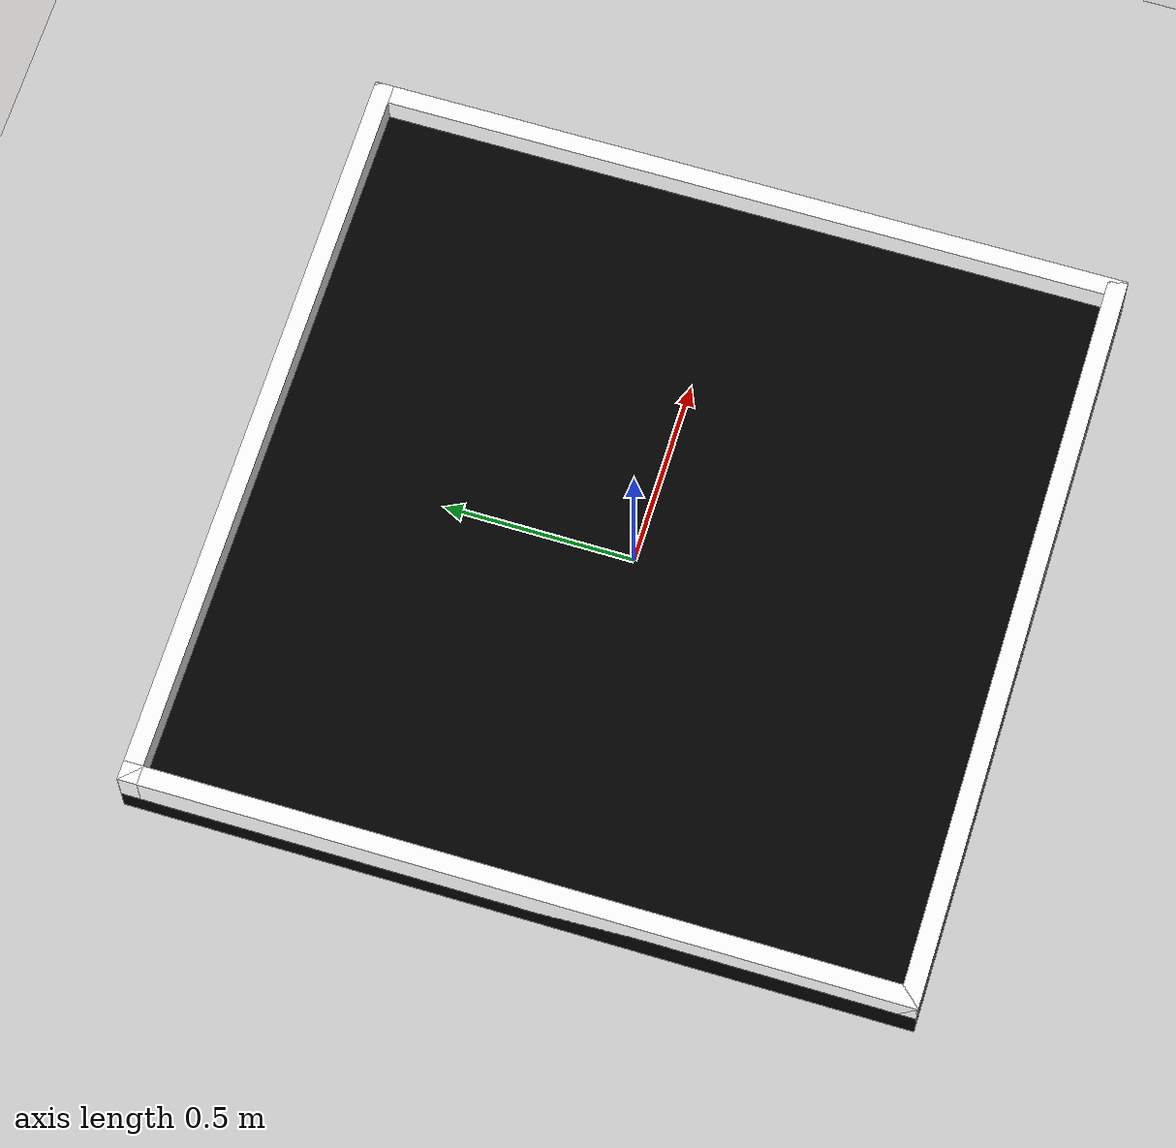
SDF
<?xml version="1.0"?>
<sdf version="1.7">
  <world name="base_world">
<!-- Gravedad -->
 <!-- Suelo manual -->
    <model name="ground_plane">
      <static>true</static>
      <link name="link">
        <collision name="collision">
          <geometry>
            <plane>
              <normal>0 0 1</normal>
              <size>100 100</size>
            </plane>
          </geometry>
        </collision>
        <visual name="visual">
          <geometry>
            <plane>
              <normal>0 0 1</normal>
              <size>100 100</size>
            </plane>
          </geometry>
          <material>
            <ambient>0.8 0.8 0.8 1</ambient>
            <diffuse>0.8 0.8 0.8 1</diffuse>
            <specular>0.8 0.8 0.8 1</specular>
          </material>
        </visual>
      </link>
    </model>

<model name="mesa_flotacion">
  <static>true</static>
  <pose>0 0 0.05 0 0 0</pose>

  <!-- Superficie de la mesa-->
  <link name="superficie">
    <pose>0 0 0.05 0 0 0</pose>
    <collision name="col_superficie">
      <geometry>
        <box>
          <size>2 2 0.1</size>
        </box>
      </geometry>
      <surface>
        <friction>
          <ode>
            <mu>0.0</mu>
            <mu2>0.0</mu2>
          </ode>
        </friction>
      </surface>
    </collision>
    <visual name="vis_superficie">
      <geometry>
        <box>
          <size>2 2 0.1</size>
        </box>
      </geometry>
      <material>
        <ambient>0 0 0 1</ambient>
        <diffuse>0 0 0 1</diffuse>
      </material>
    </visual>
  </link>
<!-- PAREDES -->

  <!-- Borde izquierdo-->
  <link name="borde_izquierdo">
    <pose>-0.975 0 0.125 0 0 0</pose>
    <collision name="col_borde_izq">
      <geometry>
        <box>
          <size>0.05 2 0.1</size>
        </box>
      </geometry>
    </collision>
    <visual name="vis_borde_izq">
      <geometry>
        <box>
          <size>0.05 2 0.1</size>
        </box>
      </geometry>
      <material>
        <ambient>1 1 1 1</ambient>
        <diffuse>1 1 1 1</diffuse>
      </material>
    </visual>
  </link>

  <!-- Borde derecho-->
  <link name="borde_derecho">
    <pose>0.975 0 0.125 0 0 0</pose>
    <collision name="col_borde_der">
      <geometry>
        <box>
          <size>0.05 2 0.1</size>
        </box>
      </geometry>
    </collision>
    <visual name="vis_borde_der">
      <geometry>
        <box>
          <size>0.05 2 0.1</size>
        </box>
      </geometry>
      <material>
        <ambient>1 1 1 1</ambient>
        <diffuse>1 1 1 1</diffuse>
      </material>
    </visual>
  </link>

  <!-- Borde frontal-->
  <link name="borde_frontal">
    <pose>0 0.975 0.125 0 0 0</pose>
    <collision name="col_borde_front">
      <geometry>
        <box>
          <size>2 0.05 0.1</size>
        </box>
      </geometry>
    </collision>
    <visual name="vis_borde_front">
      <geometry>
        <box>
          <size>2 0.05 0.1</size>
        </box>
      </geometry>
      <material>
        <ambient>1 1 1 1</ambient>
        <diffuse>1 1 1 1</diffuse>
      </material>
    </visual>
  </link>

  <!-- Borde trasero-->
  <link name="borde_trasero">
    <pose>0 -0.975 0.125 0 0 0</pose>
    <collision name="col_borde_back">
      <geometry>
        <box>
          <size>2 0.05 0.1</size>
        </box>
      </geometry>
    </collision>
    <visual name="vis_borde_back">
      <geometry>
        <box>
          <size>2 0.05 0.1</size>
        </box>
      </geometry>
      <material>
        <ambient>1 1 1 1</ambient>
        <diffuse>1 1 1 1</diffuse>
      </material>
    </visual>
  </link>
</model>

    <light type="directional" name="sun">
      <cast_shadows>true</cast_shadows>
      <direction>-0.5 -0.5 -1</direction>
      <diffuse>1 1 1 1</diffuse>
      <specular>1 1 1 1</specular>
    </light>

  </world>
</sdf>
